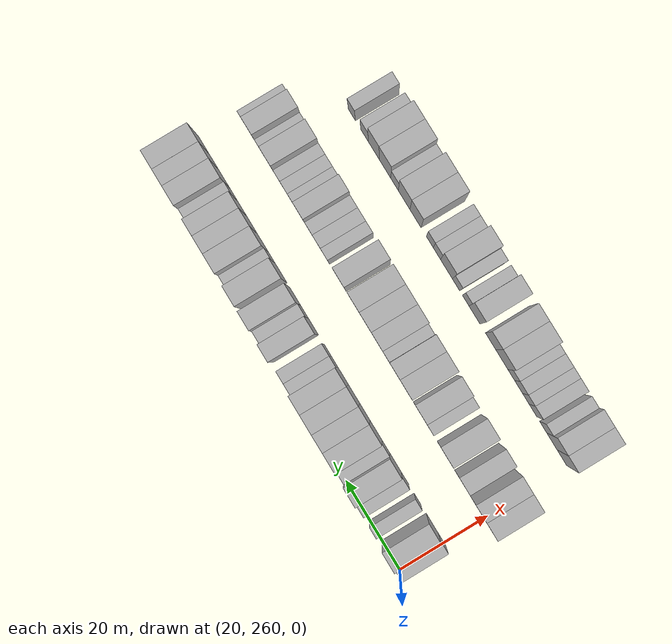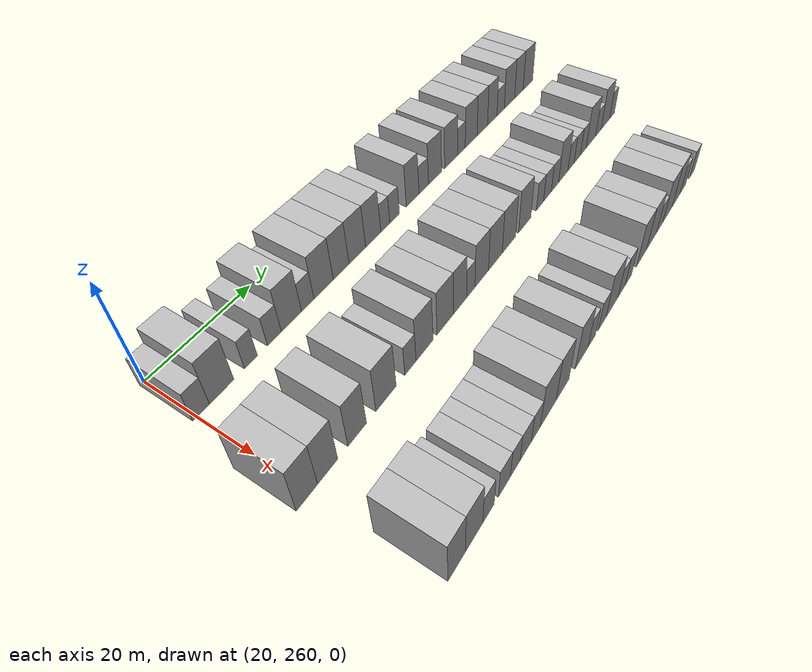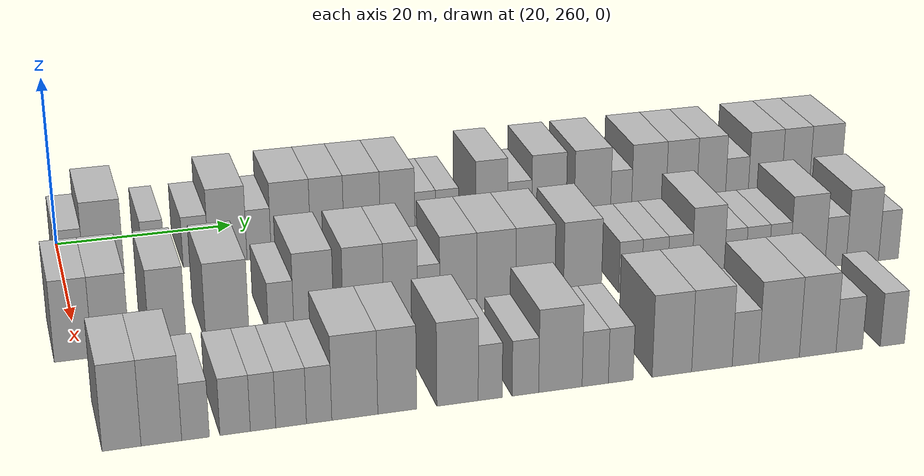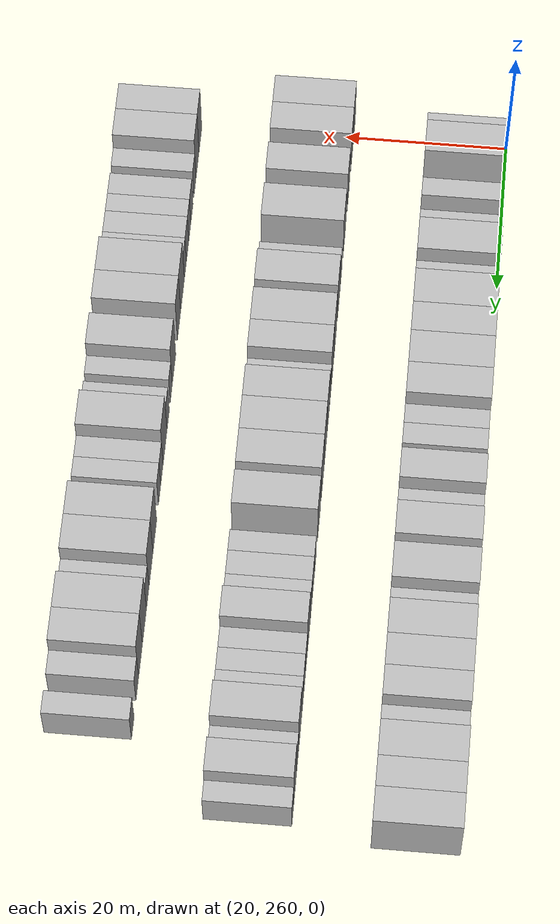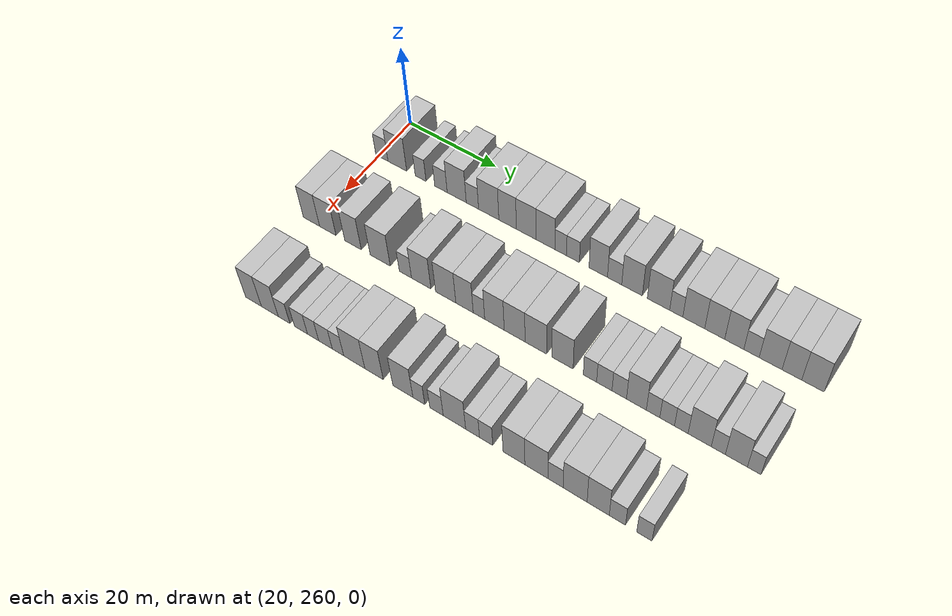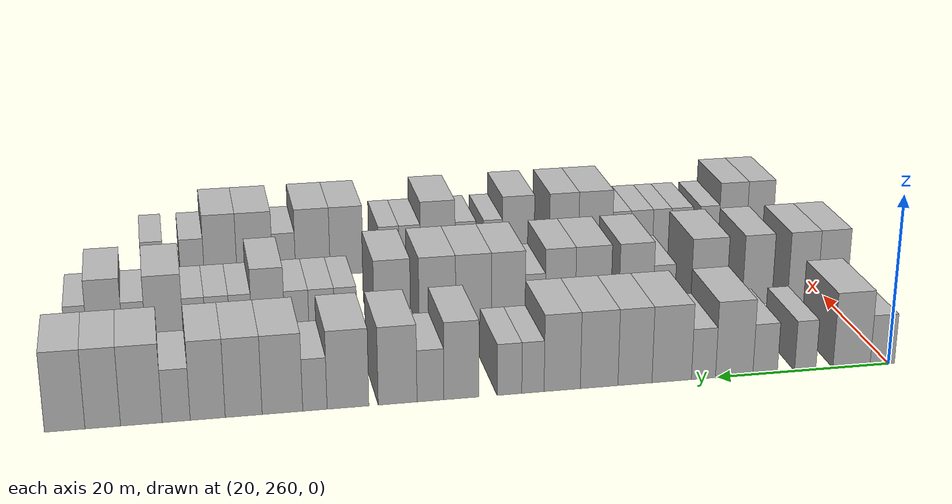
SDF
<sdf version="1.6">
 <world name="default">
  <model name="building_150">
   <static>1</static>
   <pose>25.0000 260.7521 0 0.000000 0.000000 0.000000</pose>
   <link name="link">
    <pose>0 0 3.00 0 0 0</pose>
    <collision name="collision"><geometry><box><size>10.0000 2.8990 6.0000</size></box></geometry></collision>
    <visual name="visual">
     <cast_shadows>0</cast_shadows>
     <geometry><box><size>10.0000 2.8990 6.0000</size></box></geometry>
     <material>
      <script>
       <uri>model://HANNAS_wall/materials/scripts</uri>
       <uri>model://HANNAS_wall/materials/textures</uri>
       <name>vrc/HANNAS_wall</name>
      </script>
     </material>
    </visual>
   </link>
  </model>
  <model name="building_151">
   <static>1</static>
   <pose>25.0000 264.3933 0 0.000000 0.000000 0.000000</pose>
   <link name="link">
    <pose>0 0 4.50 0 0 0</pose>
    <collision name="collision"><geometry><box><size>10.0000 4.3833 9.0000</size></box></geometry></collision>
    <visual name="visual">
     <cast_shadows>0</cast_shadows>
     <geometry><box><size>10.0000 4.3833 9.0000</size></box></geometry>
     <material>
      <script>
       <uri>model://HANNAS_wall/materials/scripts</uri>
       <uri>model://HANNAS_wall/materials/textures</uri>
       <name>vrc/HANNAS_wall</name>
      </script>
     </material>
    </visual>
   </link>
  </model>
  <model name="building_152">
   <static>1</static>
   <pose>25.0000 269.8331 0 0.000000 0.000000 0.000000</pose>
   <link name="link">
    <pose>0 0 3.00 0 0 0</pose>
    <collision name="collision"><geometry><box><size>10.0000 2.4964 6.0000</size></box></geometry></collision>
    <visual name="visual">
     <cast_shadows>0</cast_shadows>
     <geometry><box><size>10.0000 2.4964 6.0000</size></box></geometry>
     <material>
      <script>
       <uri>model://HANNAS_wall/materials/scripts</uri>
       <uri>model://HANNAS_wall/materials/textures</uri>
       <name>vrc/HANNAS_wall</name>
      </script>
     </material>
    </visual>
   </link>
  </model>
  <model name="building_153">
   <static>1</static>
   <pose>25.0000 274.5051 0 0.000000 0.000000 0.000000</pose>
   <link name="link">
    <pose>0 0 3.00 0 0 0</pose>
    <collision name="collision"><geometry><box><size>10.0000 2.8477 6.0000</size></box></geometry></collision>
    <visual name="visual">
     <cast_shadows>0</cast_shadows>
     <geometry><box><size>10.0000 2.8477 6.0000</size></box></geometry>
     <material>
      <script>
       <uri>model://HANNAS_wall/materials/scripts</uri>
       <uri>model://HANNAS_wall/materials/textures</uri>
       <name>vrc/HANNAS_wall</name>
      </script>
     </material>
    </visual>
   </link>
  </model>
  <model name="building_154">
   <static>1</static>
   <pose>25.0000 278.0814 0 0.000000 0.000000 0.000000</pose>
   <link name="link">
    <pose>0 0 4.50 0 0 0</pose>
    <collision name="collision"><geometry><box><size>10.0000 4.3049 9.0000</size></box></geometry></collision>
    <visual name="visual">
     <cast_shadows>0</cast_shadows>
     <geometry><box><size>10.0000 4.3049 9.0000</size></box></geometry>
     <material>
      <script>
       <uri>model://HANNAS_wall/materials/scripts</uri>
       <uri>model://HANNAS_wall/materials/textures</uri>
       <name>vrc/HANNAS_wall</name>
      </script>
     </material>
    </visual>
   </link>
  </model>
  <model name="building_155">
   <static>1</static>
   <pose>25.0000 281.6127 0 0.000000 0.000000 0.000000</pose>
   <link name="link">
    <pose>0 0 3.00 0 0 0</pose>
    <collision name="collision"><geometry><box><size>10.0000 2.7576 6.0000</size></box></geometry></collision>
    <visual name="visual">
     <cast_shadows>0</cast_shadows>
     <geometry><box><size>10.0000 2.7576 6.0000</size></box></geometry>
     <material>
      <script>
       <uri>model://HANNAS_wall/materials/scripts</uri>
       <uri>model://HANNAS_wall/materials/textures</uri>
       <name>vrc/HANNAS_wall</name>
      </script>
     </material>
    </visual>
   </link>
  </model>
  <model name="building_156">
   <static>1</static>
   <pose>25.0000 285.2394 0 0.000000 0.000000 0.000000</pose>
   <link name="link">
    <pose>0 0 4.50 0 0 0</pose>
    <collision name="collision"><geometry><box><size>10.0000 4.4959 9.0000</size></box></geometry></collision>
    <visual name="visual">
     <cast_shadows>0</cast_shadows>
     <geometry><box><size>10.0000 4.4959 9.0000</size></box></geometry>
     <material>
      <script>
       <uri>model://HANNAS_wall/materials/scripts</uri>
       <uri>model://HANNAS_wall/materials/textures</uri>
       <name>vrc/HANNAS_wall</name>
      </script>
     </material>
    </visual>
   </link>
  </model>
  <model name="building_157">
   <static>1</static>
   <pose>25.0000 289.4102 0 0.000000 0.000000 0.000000</pose>
   <link name="link">
    <pose>0 0 4.50 0 0 0</pose>
    <collision name="collision"><geometry><box><size>10.0000 3.8458 9.0000</size></box></geometry></collision>
    <visual name="visual">
     <cast_shadows>0</cast_shadows>
     <geometry><box><size>10.0000 3.8458 9.0000</size></box></geometry>
     <material>
      <script>
       <uri>model://HANNAS_wall/materials/scripts</uri>
       <uri>model://HANNAS_wall/materials/textures</uri>
       <name>vrc/HANNAS_wall</name>
      </script>
     </material>
    </visual>
   </link>
  </model>
  <model name="building_158">
   <static>1</static>
   <pose>25.0000 293.4467 0 0.000000 0.000000 0.000000</pose>
   <link name="link">
    <pose>0 0 4.50 0 0 0</pose>
    <collision name="collision"><geometry><box><size>10.0000 4.2271 9.0000</size></box></geometry></collision>
    <visual name="visual">
     <cast_shadows>0</cast_shadows>
     <geometry><box><size>10.0000 4.2271 9.0000</size></box></geometry>
     <material>
      <script>
       <uri>model://HANNAS_wall/materials/scripts</uri>
       <uri>model://HANNAS_wall/materials/textures</uri>
       <name>vrc/HANNAS_wall</name>
      </script>
     </material>
    </visual>
   </link>
  </model>
  <model name="building_159">
   <static>1</static>
   <pose>25.0000 297.5806 0 0.000000 0.000000 0.000000</pose>
   <link name="link">
    <pose>0 0 4.50 0 0 0</pose>
    <collision name="collision"><geometry><box><size>10.0000 4.0407 9.0000</size></box></geometry></collision>
    <visual name="visual">
     <cast_shadows>0</cast_shadows>
     <geometry><box><size>10.0000 4.0407 9.0000</size></box></geometry>
     <material>
      <script>
       <uri>model://HANNAS_wall/materials/scripts</uri>
       <uri>model://HANNAS_wall/materials/textures</uri>
       <name>vrc/HANNAS_wall</name>
      </script>
     </material>
    </visual>
   </link>
  </model>
  <model name="building_160">
   <static>1</static>
   <pose>25.0000 300.8337 0 0.000000 0.000000 0.000000</pose>
   <link name="link">
    <pose>0 0 3.00 0 0 0</pose>
    <collision name="collision"><geometry><box><size>10.0000 2.4657 6.0000</size></box></geometry></collision>
    <visual name="visual">
     <cast_shadows>0</cast_shadows>
     <geometry><box><size>10.0000 2.4657 6.0000</size></box></geometry>
     <material>
      <script>
       <uri>model://HANNAS_wall/materials/scripts</uri>
       <uri>model://HANNAS_wall/materials/textures</uri>
       <name>vrc/HANNAS_wall</name>
      </script>
     </material>
    </visual>
   </link>
  </model>
  <model name="building_161">
   <static>1</static>
   <pose>25.0000 303.4272 0 0.000000 0.000000 0.000000</pose>
   <link name="link">
    <pose>0 0 3.00 0 0 0</pose>
    <collision name="collision"><geometry><box><size>10.0000 2.7211 6.0000</size></box></geometry></collision>
    <visual name="visual">
     <cast_shadows>0</cast_shadows>
     <geometry><box><size>10.0000 2.7211 6.0000</size></box></geometry>
     <material>
      <script>
       <uri>model://HANNAS_wall/materials/scripts</uri>
       <uri>model://HANNAS_wall/materials/textures</uri>
       <name>vrc/HANNAS_wall</name>
      </script>
     </material>
    </visual>
   </link>
  </model>
  <model name="building_162">
   <static>1</static>
   <pose>25.0000 308.6975 0 0.000000 0.000000 0.000000</pose>
   <link name="link">
    <pose>0 0 4.50 0 0 0</pose>
    <collision name="collision"><geometry><box><size>10.0000 3.8196 9.0000</size></box></geometry></collision>
    <visual name="visual">
     <cast_shadows>0</cast_shadows>
     <geometry><box><size>10.0000 3.8196 9.0000</size></box></geometry>
     <material>
      <script>
       <uri>model://HANNAS_wall/materials/scripts</uri>
       <uri>model://HANNAS_wall/materials/textures</uri>
       <name>vrc/HANNAS_wall</name>
      </script>
     </material>
    </visual>
   </link>
  </model>
  <model name="building_163">
   <static>1</static>
   <pose>25.0000 312.0686 0 0.000000 0.000000 0.000000</pose>
   <link name="link">
    <pose>0 0 3.00 0 0 0</pose>
    <collision name="collision"><geometry><box><size>10.0000 2.9227 6.0000</size></box></geometry></collision>
    <visual name="visual">
     <cast_shadows>0</cast_shadows>
     <geometry><box><size>10.0000 2.9227 6.0000</size></box></geometry>
     <material>
      <script>
       <uri>model://HANNAS_wall/materials/scripts</uri>
       <uri>model://HANNAS_wall/materials/textures</uri>
       <name>vrc/HANNAS_wall</name>
      </script>
     </material>
    </visual>
   </link>
  </model>
  <model name="building_164">
   <static>1</static>
   <pose>25.0000 315.6222 0 0.000000 0.000000 0.000000</pose>
   <link name="link">
    <pose>0 0 4.50 0 0 0</pose>
    <collision name="collision"><geometry><box><size>10.0000 4.1845 9.0000</size></box></geometry></collision>
    <visual name="visual">
     <cast_shadows>0</cast_shadows>
     <geometry><box><size>10.0000 4.1845 9.0000</size></box></geometry>
     <material>
      <script>
       <uri>model://HANNAS_wall/materials/scripts</uri>
       <uri>model://HANNAS_wall/materials/textures</uri>
       <name>vrc/HANNAS_wall</name>
      </script>
     </material>
    </visual>
   </link>
  </model>
  <model name="building_165">
   <static>1</static>
   <pose>25.0000 320.9484 0 0.000000 0.000000 0.000000</pose>
   <link name="link">
    <pose>0 0 4.50 0 0 0</pose>
    <collision name="collision"><geometry><box><size>10.0000 4.4678 9.0000</size></box></geometry></collision>
    <visual name="visual">
     <cast_shadows>0</cast_shadows>
     <geometry><box><size>10.0000 4.4678 9.0000</size></box></geometry>
     <material>
      <script>
       <uri>model://HANNAS_wall/materials/scripts</uri>
       <uri>model://HANNAS_wall/materials/textures</uri>
       <name>vrc/HANNAS_wall</name>
      </script>
     </material>
    </visual>
   </link>
  </model>
  <model name="building_166">
   <static>1</static>
   <pose>25.0000 324.4764 0 0.000000 0.000000 0.000000</pose>
   <link name="link">
    <pose>0 0 3.00 0 0 0</pose>
    <collision name="collision"><geometry><box><size>10.0000 2.5881 6.0000</size></box></geometry></collision>
    <visual name="visual">
     <cast_shadows>0</cast_shadows>
     <geometry><box><size>10.0000 2.5881 6.0000</size></box></geometry>
     <material>
      <script>
       <uri>model://HANNAS_wall/materials/scripts</uri>
       <uri>model://HANNAS_wall/materials/textures</uri>
       <name>vrc/HANNAS_wall</name>
      </script>
     </material>
    </visual>
   </link>
  </model>
  <model name="building_167">
   <static>1</static>
   <pose>25.0000 327.9120 0 0.000000 0.000000 0.000000</pose>
   <link name="link">
    <pose>0 0 4.50 0 0 0</pose>
    <collision name="collision"><geometry><box><size>10.0000 4.2831 9.0000</size></box></geometry></collision>
    <visual name="visual">
     <cast_shadows>0</cast_shadows>
     <geometry><box><size>10.0000 4.2831 9.0000</size></box></geometry>
     <material>
      <script>
       <uri>model://HANNAS_wall/materials/scripts</uri>
       <uri>model://HANNAS_wall/materials/textures</uri>
       <name>vrc/HANNAS_wall</name>
      </script>
     </material>
    </visual>
   </link>
  </model>
  <model name="building_168">
   <static>1</static>
   <pose>25.0000 331.9893 0 0.000000 0.000000 0.000000</pose>
   <link name="link">
    <pose>0 0 4.50 0 0 0</pose>
    <collision name="collision"><geometry><box><size>10.0000 3.8714 9.0000</size></box></geometry></collision>
    <visual name="visual">
     <cast_shadows>0</cast_shadows>
     <geometry><box><size>10.0000 3.8714 9.0000</size></box></geometry>
     <material>
      <script>
       <uri>model://HANNAS_wall/materials/scripts</uri>
       <uri>model://HANNAS_wall/materials/textures</uri>
       <name>vrc/HANNAS_wall</name>
      </script>
     </material>
    </visual>
   </link>
  </model>
  <model name="building_169">
   <static>1</static>
   <pose>25.0000 335.7469 0 0.000000 0.000000 0.000000</pose>
   <link name="link">
    <pose>0 0 4.50 0 0 0</pose>
    <collision name="collision"><geometry><box><size>10.0000 3.6437 9.0000</size></box></geometry></collision>
    <visual name="visual">
     <cast_shadows>0</cast_shadows>
     <geometry><box><size>10.0000 3.6437 9.0000</size></box></geometry>
     <material>
      <script>
       <uri>model://HANNAS_wall/materials/scripts</uri>
       <uri>model://HANNAS_wall/materials/textures</uri>
       <name>vrc/HANNAS_wall</name>
      </script>
     </material>
    </visual>
   </link>
  </model>
  <model name="building_170">
   <static>1</static>
   <pose>25.0000 339.0179 0 0.000000 0.000000 0.000000</pose>
   <link name="link">
    <pose>0 0 3.00 0 0 0</pose>
    <collision name="collision"><geometry><box><size>10.0000 2.8984 6.0000</size></box></geometry></collision>
    <visual name="visual">
     <cast_shadows>0</cast_shadows>
     <geometry><box><size>10.0000 2.8984 6.0000</size></box></geometry>
     <material>
      <script>
       <uri>model://HANNAS_wall/materials/scripts</uri>
       <uri>model://HANNAS_wall/materials/textures</uri>
       <name>vrc/HANNAS_wall</name>
      </script>
     </material>
    </visual>
   </link>
  </model>
  <model name="building_171">
   <static>1</static>
   <pose>25.0000 342.6101 0 0.000000 0.000000 0.000000</pose>
   <link name="link">
    <pose>0 0 4.50 0 0 0</pose>
    <collision name="collision"><geometry><box><size>10.0000 4.2859 9.0000</size></box></geometry></collision>
    <visual name="visual">
     <cast_shadows>0</cast_shadows>
     <geometry><box><size>10.0000 4.2859 9.0000</size></box></geometry>
     <material>
      <script>
       <uri>model://HANNAS_wall/materials/scripts</uri>
       <uri>model://HANNAS_wall/materials/textures</uri>
       <name>vrc/HANNAS_wall</name>
      </script>
     </material>
    </visual>
   </link>
  </model>
  <model name="building_172">
   <static>1</static>
   <pose>25.0000 346.5654 0 0.000000 0.000000 0.000000</pose>
   <link name="link">
    <pose>0 0 4.50 0 0 0</pose>
    <collision name="collision"><geometry><box><size>10.0000 3.6248 9.0000</size></box></geometry></collision>
    <visual name="visual">
     <cast_shadows>0</cast_shadows>
     <geometry><box><size>10.0000 3.6248 9.0000</size></box></geometry>
     <material>
      <script>
       <uri>model://HANNAS_wall/materials/scripts</uri>
       <uri>model://HANNAS_wall/materials/textures</uri>
       <name>vrc/HANNAS_wall</name>
      </script>
     </material>
    </visual>
   </link>
  </model>
  <model name="building_173">
   <static>1</static>
   <pose>25.0000 350.4353 0 0.000000 0.000000 0.000000</pose>
   <link name="link">
    <pose>0 0 4.50 0 0 0</pose>
    <collision name="collision"><geometry><box><size>10.0000 4.1149 9.0000</size></box></geometry></collision>
    <visual name="visual">
     <cast_shadows>0</cast_shadows>
     <geometry><box><size>10.0000 4.1149 9.0000</size></box></geometry>
     <material>
      <script>
       <uri>model://HANNAS_wall/materials/scripts</uri>
       <uri>model://HANNAS_wall/materials/textures</uri>
       <name>vrc/HANNAS_wall</name>
      </script>
     </material>
    </visual>
   </link>
  </model>
  <model name="building_329">
   <static>1</static>
   <pose>44.0000 259.3331 0 0.000000 0.000000 0.000000</pose>
   <link name="link">
    <pose>0 0 4.50 0 0 0</pose>
    <collision name="collision"><geometry><box><size>10.0000 3.8034 9.0000</size></box></geometry></collision>
    <visual name="visual">
     <cast_shadows>0</cast_shadows>
     <geometry><box><size>10.0000 3.8034 9.0000</size></box></geometry>
     <material>
      <script>
       <uri>model://HANNAS_wall/materials/scripts</uri>
       <uri>model://HANNAS_wall/materials/textures</uri>
       <name>vrc/HANNAS_wall</name>
      </script>
     </material>
    </visual>
   </link>
  </model>
  <model name="building_330">
   <static>1</static>
   <pose>44.0000 263.1287 0 0.000000 0.000000 0.000000</pose>
   <link name="link">
    <pose>0 0 4.50 0 0 0</pose>
    <collision name="collision"><geometry><box><size>10.0000 3.7879 9.0000</size></box></geometry></collision>
    <visual name="visual">
     <cast_shadows>0</cast_shadows>
     <geometry><box><size>10.0000 3.7879 9.0000</size></box></geometry>
     <material>
      <script>
       <uri>model://HANNAS_wall/materials/scripts</uri>
       <uri>model://HANNAS_wall/materials/textures</uri>
       <name>vrc/HANNAS_wall</name>
      </script>
     </material>
    </visual>
   </link>
  </model>
  <model name="building_331">
   <static>1</static>
   <pose>44.0000 268.9019 0 0.000000 0.000000 0.000000</pose>
   <link name="link">
    <pose>0 0 4.50 0 0 0</pose>
    <collision name="collision"><geometry><box><size>10.0000 3.7585 9.0000</size></box></geometry></collision>
    <visual name="visual">
     <cast_shadows>0</cast_shadows>
     <geometry><box><size>10.0000 3.7585 9.0000</size></box></geometry>
     <material>
      <script>
       <uri>model://HANNAS_wall/materials/scripts</uri>
       <uri>model://HANNAS_wall/materials/textures</uri>
       <name>vrc/HANNAS_wall</name>
      </script>
     </material>
    </visual>
   </link>
  </model>
  <model name="building_332">
   <static>1</static>
   <pose>44.0000 275.0264 0 0.000000 0.000000 0.000000</pose>
   <link name="link">
    <pose>0 0 4.50 0 0 0</pose>
    <collision name="collision"><geometry><box><size>10.0000 4.4905 9.0000</size></box></geometry></collision>
    <visual name="visual">
     <cast_shadows>0</cast_shadows>
     <geometry><box><size>10.0000 4.4905 9.0000</size></box></geometry>
     <material>
      <script>
       <uri>model://HANNAS_wall/materials/scripts</uri>
       <uri>model://HANNAS_wall/materials/textures</uri>
       <name>vrc/HANNAS_wall</name>
      </script>
     </material>
    </visual>
   </link>
  </model>
  <model name="building_333">
   <static>1</static>
   <pose>44.0000 280.6144 0 0.000000 0.000000 0.000000</pose>
   <link name="link">
    <pose>0 0 3.00 0 0 0</pose>
    <collision name="collision"><geometry><box><size>10.0000 2.6854 6.0000</size></box></geometry></collision>
    <visual name="visual">
     <cast_shadows>0</cast_shadows>
     <geometry><box><size>10.0000 2.6854 6.0000</size></box></geometry>
     <material>
      <script>
       <uri>model://HANNAS_wall/materials/scripts</uri>
       <uri>model://HANNAS_wall/materials/textures</uri>
       <name>vrc/HANNAS_wall</name>
      </script>
     </material>
    </visual>
   </link>
  </model>
  <model name="building_334">
   <static>1</static>
   <pose>44.0000 284.0671 0 0.000000 0.000000 0.000000</pose>
   <link name="link">
    <pose>0 0 4.50 0 0 0</pose>
    <collision name="collision"><geometry><box><size>10.0000 4.2200 9.0000</size></box></geometry></collision>
    <visual name="visual">
     <cast_shadows>0</cast_shadows>
     <geometry><box><size>10.0000 4.2200 9.0000</size></box></geometry>
     <material>
      <script>
       <uri>model://HANNAS_wall/materials/scripts</uri>
       <uri>model://HANNAS_wall/materials/textures</uri>
       <name>vrc/HANNAS_wall</name>
      </script>
     </material>
    </visual>
   </link>
  </model>
  <model name="building_335">
   <static>1</static>
   <pose>44.0000 289.3468 0 0.000000 0.000000 0.000000</pose>
   <link name="link">
    <pose>0 0 4.50 0 0 0</pose>
    <collision name="collision"><geometry><box><size>10.0000 4.3394 9.0000</size></box></geometry></collision>
    <visual name="visual">
     <cast_shadows>0</cast_shadows>
     <geometry><box><size>10.0000 4.3394 9.0000</size></box></geometry>
     <material>
      <script>
       <uri>model://HANNAS_wall/materials/scripts</uri>
       <uri>model://HANNAS_wall/materials/textures</uri>
       <name>vrc/HANNAS_wall</name>
      </script>
     </material>
    </visual>
   </link>
  </model>
  <model name="building_336">
   <static>1</static>
   <pose>44.0000 293.3543 0 0.000000 0.000000 0.000000</pose>
   <link name="link">
    <pose>0 0 4.50 0 0 0</pose>
    <collision name="collision"><geometry><box><size>10.0000 3.6756 9.0000</size></box></geometry></collision>
    <visual name="visual">
     <cast_shadows>0</cast_shadows>
     <geometry><box><size>10.0000 3.6756 9.0000</size></box></geometry>
     <material>
      <script>
       <uri>model://HANNAS_wall/materials/scripts</uri>
       <uri>model://HANNAS_wall/materials/textures</uri>
       <name>vrc/HANNAS_wall</name>
      </script>
     </material>
    </visual>
   </link>
  </model>
  <model name="building_337">
   <static>1</static>
   <pose>44.0000 296.3941 0 0.000000 0.000000 0.000000</pose>
   <link name="link">
    <pose>0 0 3.00 0 0 0</pose>
    <collision name="collision"><geometry><box><size>10.0000 2.4042 6.0000</size></box></geometry></collision>
    <visual name="visual">
     <cast_shadows>0</cast_shadows>
     <geometry><box><size>10.0000 2.4042 6.0000</size></box></geometry>
     <material>
      <script>
       <uri>model://HANNAS_wall/materials/scripts</uri>
       <uri>model://HANNAS_wall/materials/textures</uri>
       <name>vrc/HANNAS_wall</name>
      </script>
     </material>
    </visual>
   </link>
  </model>
  <model name="building_338">
   <static>1</static>
   <pose>44.0000 299.6221 0 0.000000 0.000000 0.000000</pose>
   <link name="link">
    <pose>0 0 4.50 0 0 0</pose>
    <collision name="collision"><geometry><box><size>10.0000 4.0518 9.0000</size></box></geometry></collision>
    <visual name="visual">
     <cast_shadows>0</cast_shadows>
     <geometry><box><size>10.0000 4.0518 9.0000</size></box></geometry>
     <material>
      <script>
       <uri>model://HANNAS_wall/materials/scripts</uri>
       <uri>model://HANNAS_wall/materials/textures</uri>
       <name>vrc/HANNAS_wall</name>
      </script>
     </material>
    </visual>
   </link>
  </model>
  <model name="building_339">
   <static>1</static>
   <pose>44.0000 303.7917 0 0.000000 0.000000 0.000000</pose>
   <link name="link">
    <pose>0 0 4.50 0 0 0</pose>
    <collision name="collision"><geometry><box><size>10.0000 4.2873 9.0000</size></box></geometry></collision>
    <visual name="visual">
     <cast_shadows>0</cast_shadows>
     <geometry><box><size>10.0000 4.2873 9.0000</size></box></geometry>
     <material>
      <script>
       <uri>model://HANNAS_wall/materials/scripts</uri>
       <uri>model://HANNAS_wall/materials/textures</uri>
       <name>vrc/HANNAS_wall</name>
      </script>
     </material>
    </visual>
   </link>
  </model>
  <model name="building_340">
   <static>1</static>
   <pose>44.0000 308.1091 0 0.000000 0.000000 0.000000</pose>
   <link name="link">
    <pose>0 0 4.50 0 0 0</pose>
    <collision name="collision"><geometry><box><size>10.0000 4.3474 9.0000</size></box></geometry></collision>
    <visual name="visual">
     <cast_shadows>0</cast_shadows>
     <geometry><box><size>10.0000 4.3474 9.0000</size></box></geometry>
     <material>
      <script>
       <uri>model://HANNAS_wall/materials/scripts</uri>
       <uri>model://HANNAS_wall/materials/textures</uri>
       <name>vrc/HANNAS_wall</name>
      </script>
     </material>
    </visual>
   </link>
  </model>
  <model name="building_341">
   <static>1</static>
   <pose>44.0000 313.4242 0 0.000000 0.000000 0.000000</pose>
   <link name="link">
    <pose>0 0 4.50 0 0 0</pose>
    <collision name="collision"><geometry><box><size>10.0000 4.2828 9.0000</size></box></geometry></collision>
    <visual name="visual">
     <cast_shadows>0</cast_shadows>
     <geometry><box><size>10.0000 4.2828 9.0000</size></box></geometry>
     <material>
      <script>
       <uri>model://HANNAS_wall/materials/scripts</uri>
       <uri>model://HANNAS_wall/materials/textures</uri>
       <name>vrc/HANNAS_wall</name>
      </script>
     </material>
    </visual>
   </link>
  </model>
  <model name="building_342">
   <static>1</static>
   <pose>44.0000 318.8696 0 0.000000 0.000000 0.000000</pose>
   <link name="link">
    <pose>0 0 3.00 0 0 0</pose>
    <collision name="collision"><geometry><box><size>10.0000 2.6080 6.0000</size></box></geometry></collision>
    <visual name="visual">
     <cast_shadows>0</cast_shadows>
     <geometry><box><size>10.0000 2.6080 6.0000</size></box></geometry>
     <material>
      <script>
       <uri>model://HANNAS_wall/materials/scripts</uri>
       <uri>model://HANNAS_wall/materials/textures</uri>
       <name>vrc/HANNAS_wall</name>
      </script>
     </material>
    </visual>
   </link>
  </model>
  <model name="building_343">
   <static>1</static>
   <pose>44.0000 321.6624 0 0.000000 0.000000 0.000000</pose>
   <link name="link">
    <pose>0 0 3.00 0 0 0</pose>
    <collision name="collision"><geometry><box><size>10.0000 2.9776 6.0000</size></box></geometry></collision>
    <visual name="visual">
     <cast_shadows>0</cast_shadows>
     <geometry><box><size>10.0000 2.9776 6.0000</size></box></geometry>
     <material>
      <script>
       <uri>model://HANNAS_wall/materials/scripts</uri>
       <uri>model://HANNAS_wall/materials/textures</uri>
       <name>vrc/HANNAS_wall</name>
      </script>
     </material>
    </visual>
   </link>
  </model>
  <model name="building_344">
   <static>1</static>
   <pose>44.0000 324.5473 0 0.000000 0.000000 0.000000</pose>
   <link name="link">
    <pose>0 0 3.00 0 0 0</pose>
    <collision name="collision"><geometry><box><size>10.0000 2.7922 6.0000</size></box></geometry></collision>
    <visual name="visual">
     <cast_shadows>0</cast_shadows>
     <geometry><box><size>10.0000 2.7922 6.0000</size></box></geometry>
     <material>
      <script>
       <uri>model://HANNAS_wall/materials/scripts</uri>
       <uri>model://HANNAS_wall/materials/textures</uri>
       <name>vrc/HANNAS_wall</name>
      </script>
     </material>
    </visual>
   </link>
  </model>
  <model name="building_345">
   <static>1</static>
   <pose>44.0000 327.8314 0 0.000000 0.000000 0.000000</pose>
   <link name="link">
    <pose>0 0 4.50 0 0 0</pose>
    <collision name="collision"><geometry><box><size>10.0000 3.7760 9.0000</size></box></geometry></collision>
    <visual name="visual">
     <cast_shadows>0</cast_shadows>
     <geometry><box><size>10.0000 3.7760 9.0000</size></box></geometry>
     <material>
      <script>
       <uri>model://HANNAS_wall/materials/scripts</uri>
       <uri>model://HANNAS_wall/materials/textures</uri>
       <name>vrc/HANNAS_wall</name>
      </script>
     </material>
    </visual>
   </link>
  </model>
  <model name="building_346">
   <static>1</static>
   <pose>44.0000 330.9851 0 0.000000 0.000000 0.000000</pose>
   <link name="link">
    <pose>0 0 3.00 0 0 0</pose>
    <collision name="collision"><geometry><box><size>10.0000 2.5315 6.0000</size></box></geometry></collision>
    <visual name="visual">
     <cast_shadows>0</cast_shadows>
     <geometry><box><size>10.0000 2.5315 6.0000</size></box></geometry>
     <material>
      <script>
       <uri>model://HANNAS_wall/materials/scripts</uri>
       <uri>model://HANNAS_wall/materials/textures</uri>
       <name>vrc/HANNAS_wall</name>
      </script>
     </material>
    </visual>
   </link>
  </model>
  <model name="building_347">
   <static>1</static>
   <pose>44.0000 333.6208 0 0.000000 0.000000 0.000000</pose>
   <link name="link">
    <pose>0 0 3.00 0 0 0</pose>
    <collision name="collision"><geometry><box><size>10.0000 2.7399 6.0000</size></box></geometry></collision>
    <visual name="visual">
     <cast_shadows>0</cast_shadows>
     <geometry><box><size>10.0000 2.7399 6.0000</size></box></geometry>
     <material>
      <script>
       <uri>model://HANNAS_wall/materials/scripts</uri>
       <uri>model://HANNAS_wall/materials/textures</uri>
       <name>vrc/HANNAS_wall</name>
      </script>
     </material>
    </visual>
   </link>
  </model>
  <model name="building_348">
   <static>1</static>
   <pose>44.0000 336.2511 0 0.000000 0.000000 0.000000</pose>
   <link name="link">
    <pose>0 0 3.00 0 0 0</pose>
    <collision name="collision"><geometry><box><size>10.0000 2.5208 6.0000</size></box></geometry></collision>
    <visual name="visual">
     <cast_shadows>0</cast_shadows>
     <geometry><box><size>10.0000 2.5208 6.0000</size></box></geometry>
     <material>
      <script>
       <uri>model://HANNAS_wall/materials/scripts</uri>
       <uri>model://HANNAS_wall/materials/textures</uri>
       <name>vrc/HANNAS_wall</name>
      </script>
     </material>
    </visual>
   </link>
  </model>
  <model name="building_349">
   <static>1</static>
   <pose>44.0000 339.6366 0 0.000000 0.000000 0.000000</pose>
   <link name="link">
    <pose>0 0 4.50 0 0 0</pose>
    <collision name="collision"><geometry><box><size>10.0000 4.2502 9.0000</size></box></geometry></collision>
    <visual name="visual">
     <cast_shadows>0</cast_shadows>
     <geometry><box><size>10.0000 4.2502 9.0000</size></box></geometry>
     <material>
      <script>
       <uri>model://HANNAS_wall/materials/scripts</uri>
       <uri>model://HANNAS_wall/materials/textures</uri>
       <name>vrc/HANNAS_wall</name>
      </script>
     </material>
    </visual>
   </link>
  </model>
  <model name="building_350">
   <static>1</static>
   <pose>44.0000 343.0381 0 0.000000 0.000000 0.000000</pose>
   <link name="link">
    <pose>0 0 3.00 0 0 0</pose>
    <collision name="collision"><geometry><box><size>10.0000 2.5529 6.0000</size></box></geometry></collision>
    <visual name="visual">
     <cast_shadows>0</cast_shadows>
     <geometry><box><size>10.0000 2.5529 6.0000</size></box></geometry>
     <material>
      <script>
       <uri>model://HANNAS_wall/materials/scripts</uri>
       <uri>model://HANNAS_wall/materials/textures</uri>
       <name>vrc/HANNAS_wall</name>
      </script>
     </material>
    </visual>
   </link>
  </model>
  <model name="building_351">
   <static>1</static>
   <pose>44.0000 346.2956 0 0.000000 0.000000 0.000000</pose>
   <link name="link">
    <pose>0 0 4.50 0 0 0</pose>
    <collision name="collision"><geometry><box><size>10.0000 3.9621 9.0000</size></box></geometry></collision>
    <visual name="visual">
     <cast_shadows>0</cast_shadows>
     <geometry><box><size>10.0000 3.9621 9.0000</size></box></geometry>
     <material>
      <script>
       <uri>model://HANNAS_wall/materials/scripts</uri>
       <uri>model://HANNAS_wall/materials/textures</uri>
       <name>vrc/HANNAS_wall</name>
      </script>
     </material>
    </visual>
   </link>
  </model>
  <model name="building_352">
   <static>1</static>
   <pose>44.0000 349.4900 0 0.000000 0.000000 0.000000</pose>
   <link name="link">
    <pose>0 0 3.00 0 0 0</pose>
    <collision name="collision"><geometry><box><size>10.0000 2.4267 6.0000</size></box></geometry></collision>
    <visual name="visual">
     <cast_shadows>0</cast_shadows>
     <geometry><box><size>10.0000 2.4267 6.0000</size></box></geometry>
     <material>
      <script>
       <uri>model://HANNAS_wall/materials/scripts</uri>
       <uri>model://HANNAS_wall/materials/textures</uri>
       <name>vrc/HANNAS_wall</name>
      </script>
     </material>
    </visual>
   </link>
  </model>
  <model name="building_500">
   <static>1</static>
   <pose>63.0000 262.0753 0 0.000000 0.000000 0.000000</pose>
   <link name="link">
    <pose>0 0 4.50 0 0 0</pose>
    <collision name="collision"><geometry><box><size>10.0000 3.6125 9.0000</size></box></geometry></collision>
    <visual name="visual">
     <cast_shadows>0</cast_shadows>
     <geometry><box><size>10.0000 3.6125 9.0000</size></box></geometry>
     <material>
      <script>
       <uri>model://HANNAS_wall/materials/scripts</uri>
       <uri>model://HANNAS_wall/materials/textures</uri>
       <name>vrc/HANNAS_wall</name>
      </script>
     </material>
    </visual>
   </link>
  </model>
  <model name="building_501">
   <static>1</static>
   <pose>63.0000 265.7761 0 0.000000 0.000000 0.000000</pose>
   <link name="link">
    <pose>0 0 4.50 0 0 0</pose>
    <collision name="collision"><geometry><box><size>10.0000 3.7891 9.0000</size></box></geometry></collision>
    <visual name="visual">
     <cast_shadows>0</cast_shadows>
     <geometry><box><size>10.0000 3.7891 9.0000</size></box></geometry>
     <material>
      <script>
       <uri>model://HANNAS_wall/materials/scripts</uri>
       <uri>model://HANNAS_wall/materials/textures</uri>
       <name>vrc/HANNAS_wall</name>
      </script>
     </material>
    </visual>
   </link>
  </model>
  <model name="building_502">
   <static>1</static>
   <pose>63.0000 268.9672 0 0.000000 0.000000 0.000000</pose>
   <link name="link">
    <pose>0 0 3.00 0 0 0</pose>
    <collision name="collision"><geometry><box><size>10.0000 2.5930 6.0000</size></box></geometry></collision>
    <visual name="visual">
     <cast_shadows>0</cast_shadows>
     <geometry><box><size>10.0000 2.5930 6.0000</size></box></geometry>
     <material>
      <script>
       <uri>model://HANNAS_wall/materials/scripts</uri>
       <uri>model://HANNAS_wall/materials/textures</uri>
       <name>vrc/HANNAS_wall</name>
      </script>
     </material>
    </visual>
   </link>
  </model>
  <model name="building_503">
   <static>1</static>
   <pose>63.0000 272.7064 0 0.000000 0.000000 0.000000</pose>
   <link name="link">
    <pose>0 0 3.00 0 0 0</pose>
    <collision name="collision"><geometry><box><size>10.0000 2.8855 6.0000</size></box></geometry></collision>
    <visual name="visual">
     <cast_shadows>0</cast_shadows>
     <geometry><box><size>10.0000 2.8855 6.0000</size></box></geometry>
     <material>
      <script>
       <uri>model://HANNAS_wall/materials/scripts</uri>
       <uri>model://HANNAS_wall/materials/textures</uri>
       <name>vrc/HANNAS_wall</name>
      </script>
     </material>
    </visual>
   </link>
  </model>
  <model name="building_504">
   <static>1</static>
   <pose>63.0000 275.3642 0 0.000000 0.000000 0.000000</pose>
   <link name="link">
    <pose>0 0 3.00 0 0 0</pose>
    <collision name="collision"><geometry><box><size>10.0000 2.4302 6.0000</size></box></geometry></collision>
    <visual name="visual">
     <cast_shadows>0</cast_shadows>
     <geometry><box><size>10.0000 2.4302 6.0000</size></box></geometry>
     <material>
      <script>
       <uri>model://HANNAS_wall/materials/scripts</uri>
       <uri>model://HANNAS_wall/materials/textures</uri>
       <name>vrc/HANNAS_wall</name>
      </script>
     </material>
    </visual>
   </link>
  </model>
  <model name="building_505">
   <static>1</static>
   <pose>63.0000 278.0551 0 0.000000 0.000000 0.000000</pose>
   <link name="link">
    <pose>0 0 3.00 0 0 0</pose>
    <collision name="collision"><geometry><box><size>10.0000 2.9516 6.0000</size></box></geometry></collision>
    <visual name="visual">
     <cast_shadows>0</cast_shadows>
     <geometry><box><size>10.0000 2.9516 6.0000</size></box></geometry>
     <material>
      <script>
       <uri>model://HANNAS_wall/materials/scripts</uri>
       <uri>model://HANNAS_wall/materials/textures</uri>
       <name>vrc/HANNAS_wall</name>
      </script>
     </material>
    </visual>
   </link>
  </model>
  <model name="building_506">
   <static>1</static>
   <pose>63.0000 280.7585 0 0.000000 0.000000 0.000000</pose>
   <link name="link">
    <pose>0 0 3.00 0 0 0</pose>
    <collision name="collision"><geometry><box><size>10.0000 2.4553 6.0000</size></box></geometry></collision>
    <visual name="visual">
     <cast_shadows>0</cast_shadows>
     <geometry><box><size>10.0000 2.4553 6.0000</size></box></geometry>
     <material>
      <script>
       <uri>model://HANNAS_wall/materials/scripts</uri>
       <uri>model://HANNAS_wall/materials/textures</uri>
       <name>vrc/HANNAS_wall</name>
      </script>
     </material>
    </visual>
   </link>
  </model>
  <model name="building_507">
   <static>1</static>
   <pose>63.0000 284.2350 0 0.000000 0.000000 0.000000</pose>
   <link name="link">
    <pose>0 0 4.50 0 0 0</pose>
    <collision name="collision"><geometry><box><size>10.0000 4.4977 9.0000</size></box></geometry></collision>
    <visual name="visual">
     <cast_shadows>0</cast_shadows>
     <geometry><box><size>10.0000 4.4977 9.0000</size></box></geometry>
     <material>
      <script>
       <uri>model://HANNAS_wall/materials/scripts</uri>
       <uri>model://HANNAS_wall/materials/textures</uri>
       <name>vrc/HANNAS_wall</name>
      </script>
     </material>
    </visual>
   </link>
  </model>
  <model name="building_508">
   <static>1</static>
   <pose>63.0000 288.4070 0 0.000000 0.000000 0.000000</pose>
   <link name="link">
    <pose>0 0 4.50 0 0 0</pose>
    <collision name="collision"><geometry><box><size>10.0000 3.8463 9.0000</size></box></geometry></collision>
    <visual name="visual">
     <cast_shadows>0</cast_shadows>
     <geometry><box><size>10.0000 3.8463 9.0000</size></box></geometry>
     <material>
      <script>
       <uri>model://HANNAS_wall/materials/scripts</uri>
       <uri>model://HANNAS_wall/materials/textures</uri>
       <name>vrc/HANNAS_wall</name>
      </script>
     </material>
    </visual>
   </link>
  </model>
  <model name="building_509">
   <static>1</static>
   <pose>63.0000 294.4064 0 0.000000 0.000000 0.000000</pose>
   <link name="link">
    <pose>0 0 4.50 0 0 0</pose>
    <collision name="collision"><geometry><box><size>10.0000 4.1525 9.0000</size></box></geometry></collision>
    <visual name="visual">
     <cast_shadows>0</cast_shadows>
     <geometry><box><size>10.0000 4.1525 9.0000</size></box></geometry>
     <material>
      <script>
       <uri>model://HANNAS_wall/materials/scripts</uri>
       <uri>model://HANNAS_wall/materials/textures</uri>
       <name>vrc/HANNAS_wall</name>
      </script>
     </material>
    </visual>
   </link>
  </model>
  <model name="building_510">
   <static>1</static>
   <pose>63.0000 297.6994 0 0.000000 0.000000 0.000000</pose>
   <link name="link">
    <pose>0 0 3.00 0 0 0</pose>
    <collision name="collision"><geometry><box><size>10.0000 2.4335 6.0000</size></box></geometry></collision>
    <visual name="visual">
     <cast_shadows>0</cast_shadows>
     <geometry><box><size>10.0000 2.4335 6.0000</size></box></geometry>
     <material>
      <script>
       <uri>model://HANNAS_wall/materials/scripts</uri>
       <uri>model://HANNAS_wall/materials/textures</uri>
       <name>vrc/HANNAS_wall</name>
      </script>
     </material>
    </visual>
   </link>
  </model>
  <model name="building_511">
   <static>1</static>
   <pose>63.0000 301.2693 0 0.000000 0.000000 0.000000</pose>
   <link name="link">
    <pose>0 0 3.00 0 0 0</pose>
    <collision name="collision"><geometry><box><size>10.0000 2.7063 6.0000</size></box></geometry></collision>
    <visual name="visual">
     <cast_shadows>0</cast_shadows>
     <geometry><box><size>10.0000 2.7063 6.0000</size></box></geometry>
     <material>
      <script>
       <uri>model://HANNAS_wall/materials/scripts</uri>
       <uri>model://HANNAS_wall/materials/textures</uri>
       <name>vrc/HANNAS_wall</name>
      </script>
     </material>
    </visual>
   </link>
  </model>
  <model name="building_512">
   <static>1</static>
   <pose>63.0000 304.8569 0 0.000000 0.000000 0.000000</pose>
   <link name="link">
    <pose>0 0 4.50 0 0 0</pose>
    <collision name="collision"><geometry><box><size>10.0000 4.4689 9.0000</size></box></geometry></collision>
    <visual name="visual">
     <cast_shadows>0</cast_shadows>
     <geometry><box><size>10.0000 4.4689 9.0000</size></box></geometry>
     <material>
      <script>
       <uri>model://HANNAS_wall/materials/scripts</uri>
       <uri>model://HANNAS_wall/materials/textures</uri>
       <name>vrc/HANNAS_wall</name>
      </script>
     </material>
    </visual>
   </link>
  </model>
  <model name="building_513">
   <static>1</static>
   <pose>63.0000 308.4543 0 0.000000 0.000000 0.000000</pose>
   <link name="link">
    <pose>0 0 3.00 0 0 0</pose>
    <collision name="collision"><geometry><box><size>10.0000 2.7259 6.0000</size></box></geometry></collision>
    <visual name="visual">
     <cast_shadows>0</cast_shadows>
     <geometry><box><size>10.0000 2.7259 6.0000</size></box></geometry>
     <material>
      <script>
       <uri>model://HANNAS_wall/materials/scripts</uri>
       <uri>model://HANNAS_wall/materials/textures</uri>
       <name>vrc/HANNAS_wall</name>
      </script>
     </material>
    </visual>
   </link>
  </model>
  <model name="building_514">
   <static>1</static>
   <pose>63.0000 311.1140 0 0.000000 0.000000 0.000000</pose>
   <link name="link">
    <pose>0 0 3.00 0 0 0</pose>
    <collision name="collision"><geometry><box><size>10.0000 2.5936 6.0000</size></box></geometry></collision>
    <visual name="visual">
     <cast_shadows>0</cast_shadows>
     <geometry><box><size>10.0000 2.5936 6.0000</size></box></geometry>
     <material>
      <script>
       <uri>model://HANNAS_wall/materials/scripts</uri>
       <uri>model://HANNAS_wall/materials/textures</uri>
       <name>vrc/HANNAS_wall</name>
      </script>
     </material>
    </visual>
   </link>
  </model>
  <model name="building_515">
   <static>1</static>
   <pose>63.0000 316.5032 0 0.000000 0.000000 0.000000</pose>
   <link name="link">
    <pose>0 0 4.50 0 0 0</pose>
    <collision name="collision"><geometry><box><size>10.0000 4.1848 9.0000</size></box></geometry></collision>
    <visual name="visual">
     <cast_shadows>0</cast_shadows>
     <geometry><box><size>10.0000 4.1848 9.0000</size></box></geometry>
     <material>
      <script>
       <uri>model://HANNAS_wall/materials/scripts</uri>
       <uri>model://HANNAS_wall/materials/textures</uri>
       <name>vrc/HANNAS_wall</name>
      </script>
     </material>
    </visual>
   </link>
  </model>
  <model name="building_516">
   <static>1</static>
   <pose>63.0000 320.7666 0 0.000000 0.000000 0.000000</pose>
   <link name="link">
    <pose>0 0 4.50 0 0 0</pose>
    <collision name="collision"><geometry><box><size>10.0000 4.3420 9.0000</size></box></geometry></collision>
    <visual name="visual">
     <cast_shadows>0</cast_shadows>
     <geometry><box><size>10.0000 4.3420 9.0000</size></box></geometry>
     <material>
      <script>
       <uri>model://HANNAS_wall/materials/scripts</uri>
       <uri>model://HANNAS_wall/materials/textures</uri>
       <name>vrc/HANNAS_wall</name>
      </script>
     </material>
    </visual>
   </link>
  </model>
  <model name="building_517">
   <static>1</static>
   <pose>63.0000 324.3682 0 0.000000 0.000000 0.000000</pose>
   <link name="link">
    <pose>0 0 3.00 0 0 0</pose>
    <collision name="collision"><geometry><box><size>10.0000 2.8613 6.0000</size></box></geometry></collision>
    <visual name="visual">
     <cast_shadows>0</cast_shadows>
     <geometry><box><size>10.0000 2.8613 6.0000</size></box></geometry>
     <material>
      <script>
       <uri>model://HANNAS_wall/materials/scripts</uri>
       <uri>model://HANNAS_wall/materials/textures</uri>
       <name>vrc/HANNAS_wall</name>
      </script>
     </material>
    </visual>
   </link>
  </model>
  <model name="building_518">
   <static>1</static>
   <pose>63.0000 328.0162 0 0.000000 0.000000 0.000000</pose>
   <link name="link">
    <pose>0 0 4.50 0 0 0</pose>
    <collision name="collision"><geometry><box><size>10.0000 4.4345 9.0000</size></box></geometry></collision>
    <visual name="visual">
     <cast_shadows>0</cast_shadows>
     <geometry><box><size>10.0000 4.4345 9.0000</size></box></geometry>
     <material>
      <script>
       <uri>model://HANNAS_wall/materials/scripts</uri>
       <uri>model://HANNAS_wall/materials/textures</uri>
       <name>vrc/HANNAS_wall</name>
      </script>
     </material>
    </visual>
   </link>
  </model>
  <model name="building_519">
   <static>1</static>
   <pose>63.0000 332.2534 0 0.000000 0.000000 0.000000</pose>
   <link name="link">
    <pose>0 0 4.50 0 0 0</pose>
    <collision name="collision"><geometry><box><size>10.0000 4.0400 9.0000</size></box></geometry></collision>
    <visual name="visual">
     <cast_shadows>0</cast_shadows>
     <geometry><box><size>10.0000 4.0400 9.0000</size></box></geometry>
     <material>
      <script>
       <uri>model://HANNAS_wall/materials/scripts</uri>
       <uri>model://HANNAS_wall/materials/textures</uri>
       <name>vrc/HANNAS_wall</name>
      </script>
     </material>
    </visual>
   </link>
  </model>
  <model name="building_520">
   <static>1</static>
   <pose>63.0000 335.7364 0 0.000000 0.000000 0.000000</pose>
   <link name="link">
    <pose>0 0 3.00 0 0 0</pose>
    <collision name="collision"><geometry><box><size>10.0000 2.9259 6.0000</size></box></geometry></collision>
    <visual name="visual">
     <cast_shadows>0</cast_shadows>
     <geometry><box><size>10.0000 2.9259 6.0000</size></box></geometry>
     <material>
      <script>
       <uri>model://HANNAS_wall/materials/scripts</uri>
       <uri>model://HANNAS_wall/materials/textures</uri>
       <name>vrc/HANNAS_wall</name>
      </script>
     </material>
    </visual>
   </link>
  </model>
  <model name="building_521">
   <static>1</static>
   <pose>63.0000 340.5581 0 0.000000 0.000000 0.000000</pose>
   <link name="link">
    <pose>0 0 3.00 0 0 0</pose>
    <collision name="collision"><geometry><box><size>10.0000 2.7175 6.0000</size></box></geometry></collision>
    <visual name="visual">
     <cast_shadows>0</cast_shadows>
     <geometry><box><size>10.0000 2.7175 6.0000</size></box></geometry>
     <material>
      <script>
       <uri>model://HANNAS_wall/materials/scripts</uri>
       <uri>model://HANNAS_wall/materials/textures</uri>
       <name>vrc/HANNAS_wall</name>
      </script>
     </material>
    </visual>
   </link>
  </model>
 </world>
</sdf>
